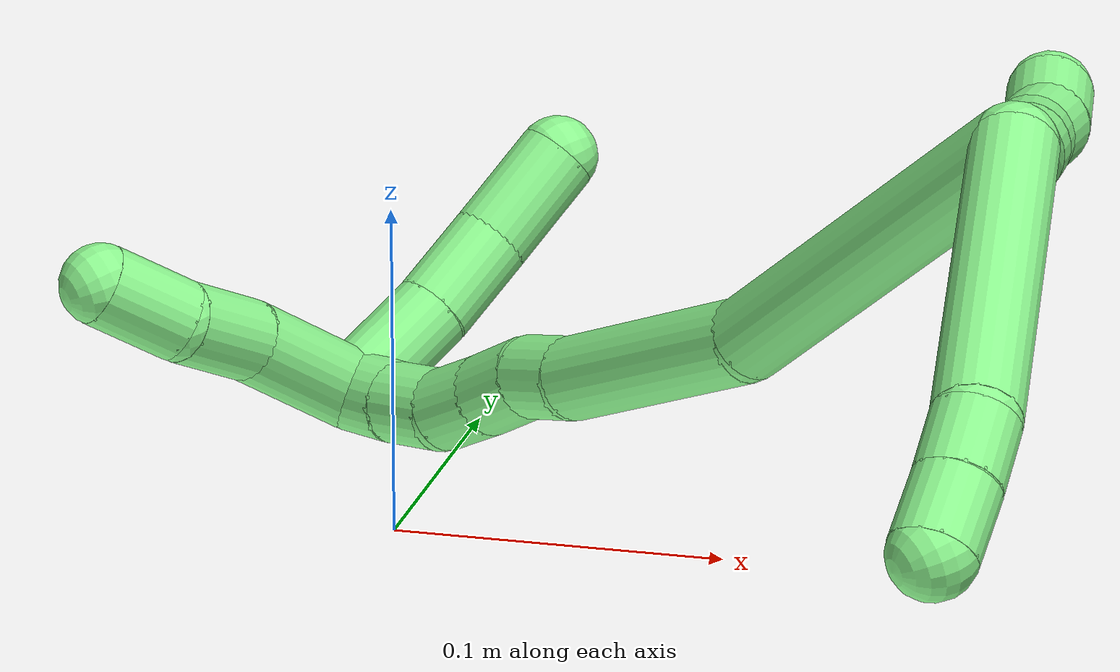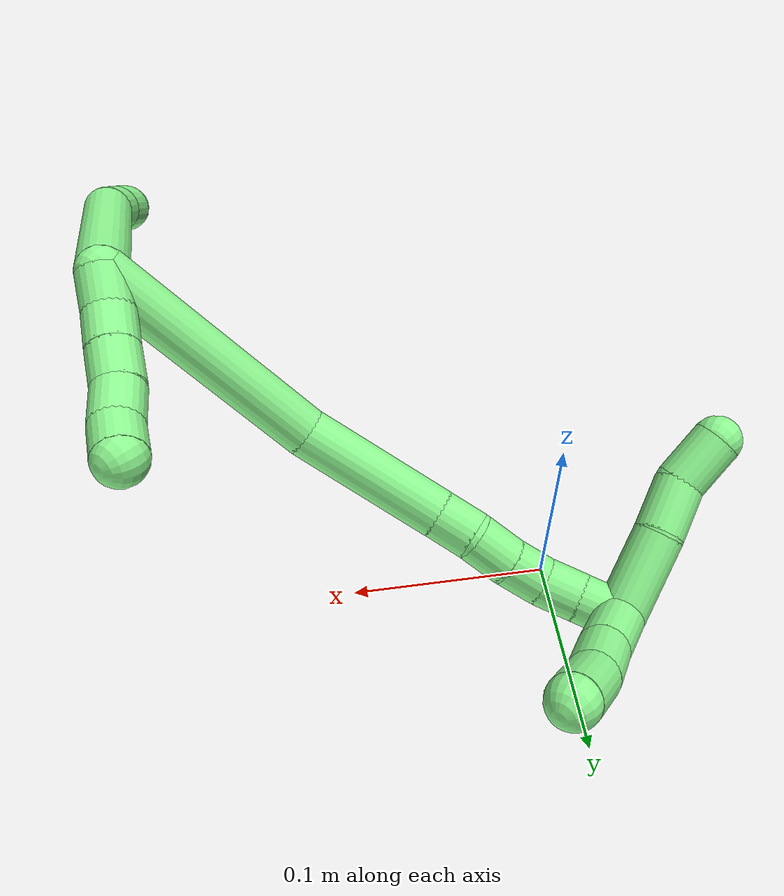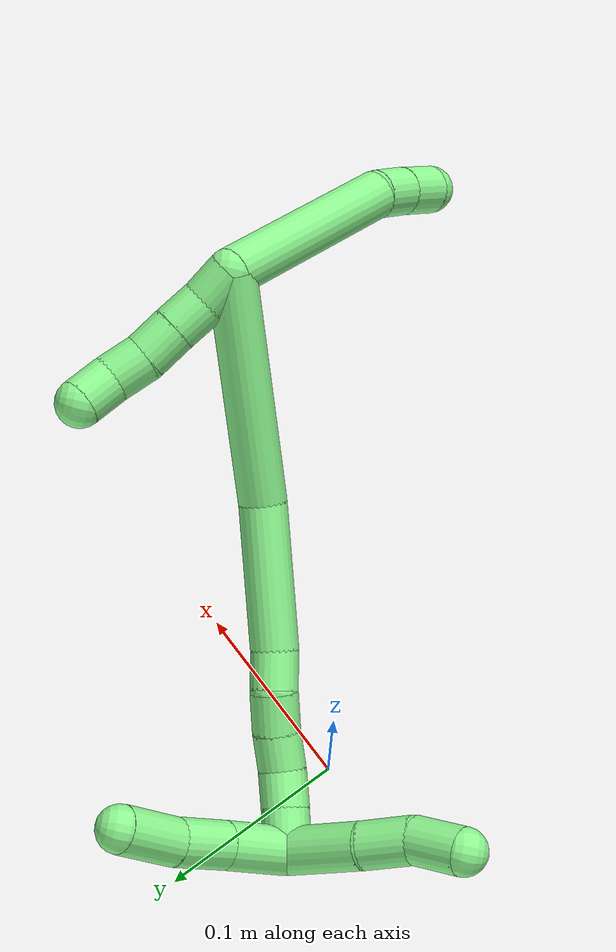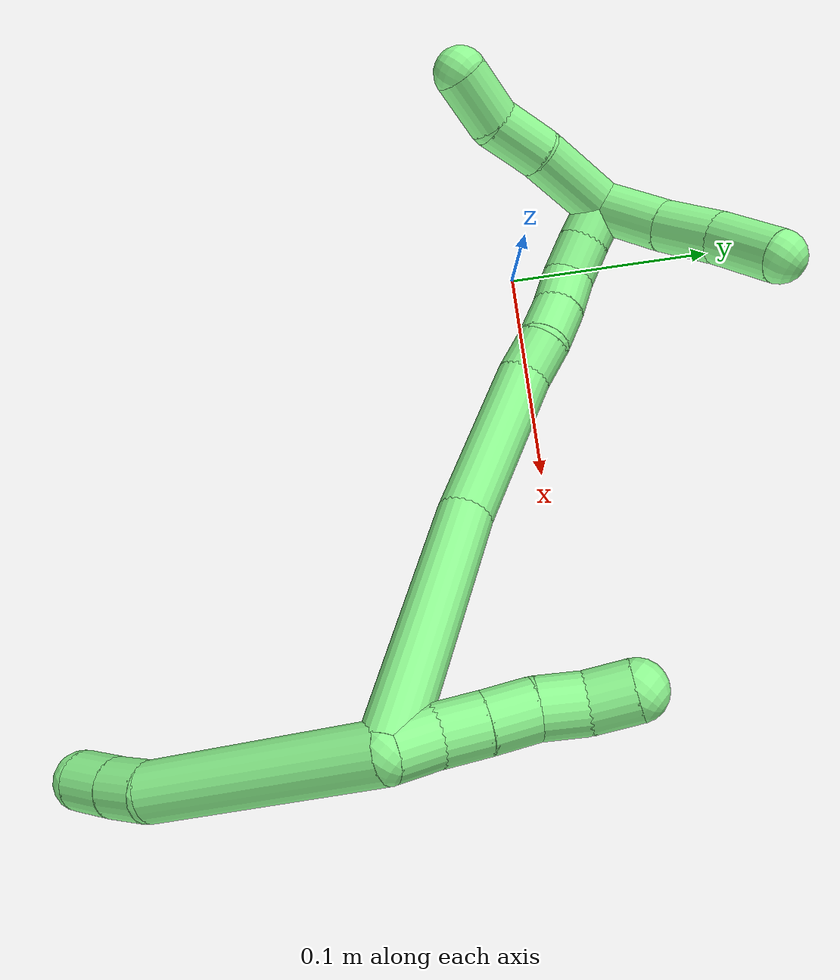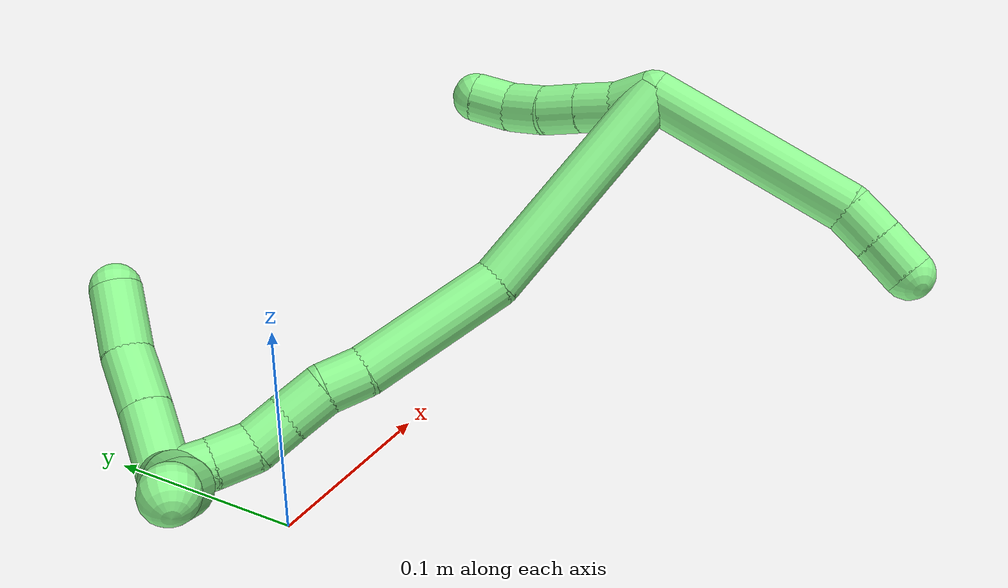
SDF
<sdf version="1.7">
 <world name="default">
  <model name="13">
   <static>0</static>
   <link name="13">
    <collision name="collision-cylinder-e_1_2_8">
     <pose>0.038835 -0.012544 -0.035199 2.79925 0.80466 2.36989</pose>
     <geometry><cylinder><radius>0.0125</radius><length>0.107786</length></cylinder></geometry>
     <surface>
      <friction><ode><mu>1.16</mu><mu2>1.16</mu2><slip1>0</slip1><slip2>0</slip2></ode></friction>
      <contact><ode><kp>1e+06</kp><kd>1</kd><max_vel>0</max_vel><min_depth>0.001</min_depth></ode></contact>
     </surface>
    </collision>
    <visual name="visual-cylinder-e_1_2_8">
     <pose>0.038835 -0.012544 -0.035199 2.79925 0.80466 2.36989</pose>
     <geometry><cylinder><radius>0.0125</radius><length>0.107786</length></cylinder></geometry>
     <material><ambient>0.564706 0.984314 0.572549 1</ambient></material>
    </visual>
    <collision name="collision-cylinder-e_2_8_9">
     <pose>0.084589 -0.024797 -0.077979 -3.10328 0.739345 -3.04279</pose>
     <geometry><cylinder><radius>0.0125</radius><length>0.020538</length></cylinder></geometry>
     <surface>
      <friction><ode><mu>1.16</mu><mu2>1.16</mu2><slip1>0</slip1><slip2>0</slip2></ode></friction>
      <contact><ode><kp>1e+06</kp><kd>1</kd><max_vel>0</max_vel><min_depth>0.001</min_depth></ode></contact>
     </surface>
    </collision>
    <visual name="visual-cylinder-e_2_8_9">
     <pose>0.084589 -0.024797 -0.077979 -3.10328 0.739345 -3.04279</pose>
     <geometry><cylinder><radius>0.0125</radius><length>0.020538</length></cylinder></geometry>
     <material><ambient>0.564706 0.984314 0.572549 1</ambient></material>
    </visual>
    <collision name="collision-cylinder-e_3_9_6">
     <pose>0.098453 -0.023903 -0.093861 -3.06907 0.695436 -2.94207</pose>
     <geometry><cylinder><radius>0.0125</radius><length>0.021676</length></cylinder></geometry>
     <surface>
      <friction><ode><mu>1.16</mu><mu2>1.16</mu2><slip1>0</slip1><slip2>0</slip2></ode></friction>
      <contact><ode><kp>1e+06</kp><kd>1</kd><max_vel>0</max_vel><min_depth>0.001</min_depth></ode></contact>
     </surface>
    </collision>
    <visual name="visual-cylinder-e_3_9_6">
     <pose>0.098453 -0.023903 -0.093861 -3.06907 0.695436 -2.94207</pose>
     <geometry><cylinder><radius>0.0125</radius><length>0.021676</length></cylinder></geometry>
     <material><ambient>0.564706 0.984314 0.572549 1</ambient></material>
    </visual>
    <collision name="collision-cylinder-e_1_2_10">
     <pose>-0.002426 0.008596 0.004498 -1.08873 -0.245088 0.148843</pose>
     <geometry><cylinder><radius>0.0125</radius><length>0.02</length></cylinder></geometry>
     <surface>
      <friction><ode><mu>1.16</mu><mu2>1.16</mu2><slip1>0</slip1><slip2>0</slip2></ode></friction>
      <contact><ode><kp>1e+06</kp><kd>1</kd><max_vel>0</max_vel><min_depth>0.001</min_depth></ode></contact>
     </surface>
    </collision>
    <visual name="visual-cylinder-e_1_2_10">
     <pose>-0.002426 0.008596 0.004498 -1.08873 -0.245088 0.148843</pose>
     <geometry><cylinder><radius>0.0125</radius><length>0.02</length></cylinder></geometry>
     <material><ambient>0.564706 0.984314 0.572549 1</ambient></material>
    </visual>
    <collision name="collision-cylinder-e_2_10_11">
     <pose>-0.00896 0.024325 0.014673 -0.898541 -0.423281 0.206454</pose>
     <geometry><cylinder><radius>0.0125</radius><length>0.02</length></cylinder></geometry>
     <surface>
      <friction><ode><mu>1.16</mu><mu2>1.16</mu2><slip1>0</slip1><slip2>0</slip2></ode></friction>
      <contact><ode><kp>1e+06</kp><kd>1</kd><max_vel>0</max_vel><min_depth>0.001</min_depth></ode></contact>
     </surface>
    </collision>
    <visual name="visual-cylinder-e_2_10_11">
     <pose>-0.00896 0.024325 0.014673 -0.898541 -0.423281 0.206454</pose>
     <geometry><cylinder><radius>0.0125</radius><length>0.02</length></cylinder></geometry>
     <material><ambient>0.564706 0.984314 0.572549 1</ambient></material>
    </visual>
    <collision name="collision-cylinder-e_3_11_12">
     <pose>-0.017246 0.038749 0.025773 -0.931285 -0.43101 0.219116</pose>
     <geometry><cylinder><radius>0.0125</radius><length>0.02</length></cylinder></geometry>
     <surface>
      <friction><ode><mu>1.16</mu><mu2>1.16</mu2><slip1>0</slip1><slip2>0</slip2></ode></friction>
      <contact><ode><kp>1e+06</kp><kd>1</kd><max_vel>0</max_vel><min_depth>0.001</min_depth></ode></contact>
     </surface>
    </collision>
    <visual name="visual-cylinder-e_3_11_12">
     <pose>-0.017246 0.038749 0.025773 -0.931285 -0.43101 0.219116</pose>
     <geometry><cylinder><radius>0.0125</radius><length>0.02</length></cylinder></geometry>
     <material><ambient>0.564706 0.984314 0.572549 1</ambient></material>
    </visual>
    <collision name="collision-cylinder-e_4_12_13">
     <pose>-0.025253 0.052256 0.038028 -0.738259 -0.392923 0.15369</pose>
     <geometry><cylinder><radius>0.0125</radius><length>0.02</length></cylinder></geometry>
     <surface>
      <friction><ode><mu>1.16</mu><mu2>1.16</mu2><slip1>0</slip1><slip2>0</slip2></ode></friction>
      <contact><ode><kp>1e+06</kp><kd>1</kd><max_vel>0</max_vel><min_depth>0.001</min_depth></ode></contact>
     </surface>
    </collision>
    <visual name="visual-cylinder-e_4_12_13">
     <pose>-0.025253 0.052256 0.038028 -0.738259 -0.392923 0.15369</pose>
     <geometry><cylinder><radius>0.0125</radius><length>0.02</length></cylinder></geometry>
     <material><ambient>0.564706 0.984314 0.572549 1</ambient></material>
    </visual>
    <collision name="collision-cylinder-e_5_13_5">
     <pose>-0.035419 0.063221 0.050968 -0.660852 -0.686396 0.243919</pose>
     <geometry><cylinder><radius>0.0125</radius><length>0.02</length></cylinder></geometry>
     <surface>
      <friction><ode><mu>1.16</mu><mu2>1.16</mu2><slip1>0</slip1><slip2>0</slip2></ode></friction>
      <contact><ode><kp>1e+06</kp><kd>1</kd><max_vel>0</max_vel><min_depth>0.001</min_depth></ode></contact>
     </surface>
    </collision>
    <visual name="visual-cylinder-e_5_13_5">
     <pose>-0.035419 0.063221 0.050968 -0.660852 -0.686396 0.243919</pose>
     <geometry><cylinder><radius>0.0125</radius><length>0.02</length></cylinder></geometry>
     <material><ambient>0.564706 0.984314 0.572549 1</ambient></material>
    </visual>
    <collision name="collision-cylinder-e_1_2_14">
     <pose>-0.01477 0.053478 -0.023619 -1.98669 -0.247473 0.377244</pose>
     <geometry><cylinder><radius>0.0125</radius><length>0.120597</length></cylinder></geometry>
     <surface>
      <friction><ode><mu>1.16</mu><mu2>1.16</mu2><slip1>0</slip1><slip2>0</slip2></ode></friction>
      <contact><ode><kp>1e+06</kp><kd>1</kd><max_vel>0</max_vel><min_depth>0.001</min_depth></ode></contact>
     </surface>
    </collision>
    <visual name="visual-cylinder-e_1_2_14">
     <pose>-0.01477 0.053478 -0.023619 -1.98669 -0.247473 0.377244</pose>
     <geometry><cylinder><radius>0.0125</radius><length>0.120597</length></cylinder></geometry>
     <material><ambient>0.564706 0.984314 0.572549 1</ambient></material>
    </visual>
    <collision name="collision-cylinder-e_2_14_15">
     <pose>-0.049191 0.137218 -0.059166 -1.94627 -0.543411 0.776946</pose>
     <geometry><cylinder><radius>0.0125</radius><length>0.076007</length></cylinder></geometry>
     <surface>
      <friction><ode><mu>1.16</mu><mu2>1.16</mu2><slip1>0</slip1><slip2>0</slip2></ode></friction>
      <contact><ode><kp>1e+06</kp><kd>1</kd><max_vel>0</max_vel><min_depth>0.001</min_depth></ode></contact>
     </surface>
    </collision>
    <visual name="visual-cylinder-e_2_14_15">
     <pose>-0.049191 0.137218 -0.059166 -1.94627 -0.543411 0.776946</pose>
     <geometry><cylinder><radius>0.0125</radius><length>0.076007</length></cylinder></geometry>
     <material><ambient>0.564706 0.984314 0.572549 1</ambient></material>
    </visual>
    <collision name="collision-cylinder-e_3_15_16">
     <pose>-0.07546 0.1751 -0.073093 -1.82724 -0.698912 0.882468</pose>
     <geometry><cylinder><radius>0.0125</radius><length>0.020578</length></cylinder></geometry>
     <surface>
      <friction><ode><mu>1.16</mu><mu2>1.16</mu2><slip1>0</slip1><slip2>0</slip2></ode></friction>
      <contact><ode><kp>1e+06</kp><kd>1</kd><max_vel>0</max_vel><min_depth>0.001</min_depth></ode></contact>
     </surface>
    </collision>
    <visual name="visual-cylinder-e_3_15_16">
     <pose>-0.07546 0.1751 -0.073093 -1.82724 -0.698912 0.882468</pose>
     <geometry><cylinder><radius>0.0125</radius><length>0.020578</length></cylinder></geometry>
     <material><ambient>0.564706 0.984314 0.572549 1</ambient></material>
    </visual>
    <collision name="collision-cylinder-e_4_16_17">
     <pose>-0.086543 0.191869 -0.078449 -1.92256 -0.42942 0.605468</pose>
     <geometry><cylinder><radius>0.0125</radius><length>0.02144</length></cylinder></geometry>
     <surface>
      <friction><ode><mu>1.16</mu><mu2>1.16</mu2><slip1>0</slip1><slip2>0</slip2></ode></friction>
      <contact><ode><kp>1e+06</kp><kd>1</kd><max_vel>0</max_vel><min_depth>0.001</min_depth></ode></contact>
     </surface>
    </collision>
    <visual name="visual-cylinder-e_4_16_17">
     <pose>-0.086543 0.191869 -0.078449 -1.92256 -0.42942 0.605468</pose>
     <geometry><cylinder><radius>0.0125</radius><length>0.02144</length></cylinder></geometry>
     <material><ambient>0.564706 0.984314 0.572549 1</ambient></material>
    </visual>
    <collision name="collision-cylinder-e_5_17_18">
     <pose>-0.09551 0.209142 -0.085713 -2.01902 -0.463349 0.717907</pose>
     <geometry><cylinder><radius>0.0125</radius><length>0.020152</length></cylinder></geometry>
     <surface>
      <friction><ode><mu>1.16</mu><mu2>1.16</mu2><slip1>0</slip1><slip2>0</slip2></ode></friction>
      <contact><ode><kp>1e+06</kp><kd>1</kd><max_vel>0</max_vel><min_depth>0.001</min_depth></ode></contact>
     </surface>
    </collision>
    <visual name="visual-cylinder-e_5_17_18">
     <pose>-0.09551 0.209142 -0.085713 -2.01902 -0.463349 0.717907</pose>
     <geometry><cylinder><radius>0.0125</radius><length>0.020152</length></cylinder></geometry>
     <material><ambient>0.564706 0.984314 0.572549 1</ambient></material>
    </visual>
    <collision name="collision-cylinder-e_6_18_19">
     <pose>-0.107354 0.22376 -0.092291 -1.96098 -0.807518 1.13531</pose>
     <geometry><cylinder><radius>0.0125</radius><length>0.020317</length></cylinder></geometry>
     <surface>
      <friction><ode><mu>1.16</mu><mu2>1.16</mu2><slip1>0</slip1><slip2>0</slip2></ode></friction>
      <contact><ode><kp>1e+06</kp><kd>1</kd><max_vel>0</max_vel><min_depth>0.001</min_depth></ode></contact>
     </surface>
    </collision>
    <visual name="visual-cylinder-e_6_18_19">
     <pose>-0.107354 0.22376 -0.092291 -1.96098 -0.807518 1.13531</pose>
     <geometry><cylinder><radius>0.0125</radius><length>0.020317</length></cylinder></geometry>
     <material><ambient>0.564706 0.984314 0.572549 1</ambient></material>
    </visual>
    <collision name="collision-cylinder-e_7_19_1">
     <pose>-0.122685 0.23661 -0.09721 -1.91087 -0.870052 1.16308</pose>
     <geometry><cylinder><radius>0.0125</radius><length>0.02091</length></cylinder></geometry>
     <surface>
      <friction><ode><mu>1.16</mu><mu2>1.16</mu2><slip1>0</slip1><slip2>0</slip2></ode></friction>
      <contact><ode><kp>1e+06</kp><kd>1</kd><max_vel>0</max_vel><min_depth>0.001</min_depth></ode></contact>
     </surface>
    </collision>
    <visual name="visual-cylinder-e_7_19_1">
     <pose>-0.122685 0.23661 -0.09721 -1.91087 -0.870052 1.16308</pose>
     <geometry><cylinder><radius>0.0125</radius><length>0.02091</length></cylinder></geometry>
     <material><ambient>0.564706 0.984314 0.572549 1</ambient></material>
    </visual>
    <collision name="collision-cylinder-e_1_1_20">
     <pose>-0.138623 0.229009 -0.114755 2.40195 -0.366453 -0.891804</pose>
     <geometry><cylinder><radius>0.0125</radius><length>0.044357</length></cylinder></geometry>
     <surface>
      <friction><ode><mu>1.16</mu><mu2>1.16</mu2><slip1>0</slip1><slip2>0</slip2></ode></friction>
      <contact><ode><kp>1e+06</kp><kd>1</kd><max_vel>0</max_vel><min_depth>0.001</min_depth></ode></contact>
     </surface>
    </collision>
    <visual name="visual-cylinder-e_1_1_20">
     <pose>-0.138623 0.229009 -0.114755 2.40195 -0.366453 -0.891804</pose>
     <geometry><cylinder><radius>0.0125</radius><length>0.044357</length></cylinder></geometry>
     <material><ambient>0.564706 0.984314 0.572549 1</ambient></material>
    </visual>
    <collision name="collision-cylinder-e_2_20_21">
     <pose>-0.149908 0.206851 -0.140619 2.48163 -0.244518 -0.688887</pose>
     <geometry><cylinder><radius>0.0125</radius><length>0.027575</length></cylinder></geometry>
     <surface>
      <friction><ode><mu>1.16</mu><mu2>1.16</mu2><slip1>0</slip1><slip2>0</slip2></ode></friction>
      <contact><ode><kp>1e+06</kp><kd>1</kd><max_vel>0</max_vel><min_depth>0.001</min_depth></ode></contact>
     </surface>
    </collision>
    <visual name="visual-cylinder-e_2_20_21">
     <pose>-0.149908 0.206851 -0.140619 2.48163 -0.244518 -0.688887</pose>
     <geometry><cylinder><radius>0.0125</radius><length>0.027575</length></cylinder></geometry>
     <material><ambient>0.564706 0.984314 0.572549 1</ambient></material>
    </visual>
    <collision name="collision-cylinder-e_3_21_4">
     <pose>-0.160958 0.19237 -0.161088 2.57642 -0.581855 -1.60155</pose>
     <geometry><cylinder><radius>0.0125</radius><length>0.028068</length></cylinder></geometry>
     <surface>
      <friction><ode><mu>1.16</mu><mu2>1.16</mu2><slip1>0</slip1><slip2>0</slip2></ode></friction>
      <contact><ode><kp>1e+06</kp><kd>1</kd><max_vel>0</max_vel><min_depth>0.001</min_depth></ode></contact>
     </surface>
    </collision>
    <visual name="visual-cylinder-e_3_21_4">
     <pose>-0.160958 0.19237 -0.161088 2.57642 -0.581855 -1.60155</pose>
     <geometry><cylinder><radius>0.0125</radius><length>0.028068</length></cylinder></geometry>
     <material><ambient>0.564706 0.984314 0.572549 1</ambient></material>
    </visual>
    <collision name="collision-cylinder-e_1_1_22">
     <pose>-0.136122 0.240536 -0.082381 0.141281 -0.305788 -0.021806</pose>
     <geometry><cylinder><radius>0.0125</radius><length>0.036179</length></cylinder></geometry>
     <surface>
      <friction><ode><mu>1.16</mu><mu2>1.16</mu2><slip1>0</slip1><slip2>0</slip2></ode></friction>
      <contact><ode><kp>1e+06</kp><kd>1</kd><max_vel>0</max_vel><min_depth>0.001</min_depth></ode></contact>
     </surface>
    </collision>
    <visual name="visual-cylinder-e_1_1_22">
     <pose>-0.136122 0.240536 -0.082381 0.141281 -0.305788 -0.021806</pose>
     <geometry><cylinder><radius>0.0125</radius><length>0.036179</length></cylinder></geometry>
     <material><ambient>0.564706 0.984314 0.572549 1</ambient></material>
    </visual>
    <collision name="collision-cylinder-e_2_22_23">
     <pose>-0.147218 0.235415 -0.051768 0.196386 -0.388617 -0.038767</pose>
     <geometry><cylinder><radius>0.0125</radius><length>0.029822</length></cylinder></geometry>
     <surface>
      <friction><ode><mu>1.16</mu><mu2>1.16</mu2><slip1>0</slip1><slip2>0</slip2></ode></friction>
      <contact><ode><kp>1e+06</kp><kd>1</kd><max_vel>0</max_vel><min_depth>0.001</min_depth></ode></contact>
     </surface>
    </collision>
    <visual name="visual-cylinder-e_2_22_23">
     <pose>-0.147218 0.235415 -0.051768 0.196386 -0.388617 -0.038767</pose>
     <geometry><cylinder><radius>0.0125</radius><length>0.029822</length></cylinder></geometry>
     <material><ambient>0.564706 0.984314 0.572549 1</ambient></material>
    </visual>
    <collision name="collision-cylinder-e_3_23_3">
     <pose>-0.158616 0.227198 -0.02322 0.352541 -0.34494 -0.062037</pose>
     <geometry><cylinder><radius>0.0125</radius><length>0.033999</length></cylinder></geometry>
     <surface>
      <friction><ode><mu>1.16</mu><mu2>1.16</mu2><slip1>0</slip1><slip2>0</slip2></ode></friction>
      <contact><ode><kp>1e+06</kp><kd>1</kd><max_vel>0</max_vel><min_depth>0.001</min_depth></ode></contact>
     </surface>
    </collision>
    <visual name="visual-cylinder-e_3_23_3">
     <pose>-0.158616 0.227198 -0.02322 0.352541 -0.34494 -0.062037</pose>
     <geometry><cylinder><radius>0.0125</radius><length>0.033999</length></cylinder></geometry>
     <material><ambient>0.564706 0.984314 0.572549 1</ambient></material>
    </visual>
    <collision name="collision-sphere-3">
     <pose>-0.164364 0.221674 -0.008206 0 -0 0</pose>
     <geometry><sphere><radius>0.0125</radius></sphere></geometry>
     <surface>
      <friction><ode><mu>1.16</mu><mu2>1.16</mu2><slip1>0</slip1><slip2>0</slip2></ode></friction>
      <contact><ode><kp>1e+06</kp><kd>1</kd><max_vel>0</max_vel><min_depth>0.001</min_depth></ode></contact>
     </surface>
    </collision>
    <visual name="visual-sphere-3">
     <pose>-0.164364 0.221674 -0.008206 0 -0 0</pose>
     <geometry><sphere><radius>0.0125</radius></sphere></geometry>
     <material><ambient>0.564706 0.984314 0.572549 1</ambient></material>
    </visual>
    <collision name="collision-sphere-23">
     <pose>-0.152868 0.232722 -0.038235 0 -0 0</pose>
     <geometry><sphere><radius>0.0125</radius></sphere></geometry>
     <surface>
      <friction><ode><mu>1.16</mu><mu2>1.16</mu2><slip1>0</slip1><slip2>0</slip2></ode></friction>
      <contact><ode><kp>1e+06</kp><kd>1</kd><max_vel>0</max_vel><min_depth>0.001</min_depth></ode></contact>
     </surface>
    </collision>
    <visual name="visual-sphere-23">
     <pose>-0.152868 0.232722 -0.038235 0 -0 0</pose>
     <geometry><sphere><radius>0.0125</radius></sphere></geometry>
     <material><ambient>0.564706 0.984314 0.572549 1</ambient></material>
    </visual>
    <collision name="collision-sphere-22">
     <pose>-0.141568 0.238107 -0.065302 0 -0 0</pose>
     <geometry><sphere><radius>0.0125</radius></sphere></geometry>
     <surface>
      <friction><ode><mu>1.16</mu><mu2>1.16</mu2><slip1>0</slip1><slip2>0</slip2></ode></friction>
      <contact><ode><kp>1e+06</kp><kd>1</kd><max_vel>0</max_vel><min_depth>0.001</min_depth></ode></contact>
     </surface>
    </collision>
    <visual name="visual-sphere-22">
     <pose>-0.141568 0.238107 -0.065302 0 -0 0</pose>
     <geometry><sphere><radius>0.0125</radius></sphere></geometry>
     <material><ambient>0.564706 0.984314 0.572549 1</ambient></material>
    </visual>
    <collision name="collision-sphere-4">
     <pose>-0.168671 0.186091 -0.17099 0 -0 0</pose>
     <geometry><sphere><radius>0.0125</radius></sphere></geometry>
     <surface>
      <friction><ode><mu>1.16</mu><mu2>1.16</mu2><slip1>0</slip1><slip2>0</slip2></ode></friction>
      <contact><ode><kp>1e+06</kp><kd>1</kd><max_vel>0</max_vel><min_depth>0.001</min_depth></ode></contact>
     </surface>
    </collision>
    <visual name="visual-sphere-4">
     <pose>-0.168671 0.186091 -0.17099 0 -0 0</pose>
     <geometry><sphere><radius>0.0125</radius></sphere></geometry>
     <material><ambient>0.564706 0.984314 0.572549 1</ambient></material>
    </visual>
    <collision name="collision-sphere-21">
     <pose>-0.153246 0.198649 -0.151187 0 -0 0</pose>
     <geometry><sphere><radius>0.0125</radius></sphere></geometry>
     <surface>
      <friction><ode><mu>1.16</mu><mu2>1.16</mu2><slip1>0</slip1><slip2>0</slip2></ode></friction>
      <contact><ode><kp>1e+06</kp><kd>1</kd><max_vel>0</max_vel><min_depth>0.001</min_depth></ode></contact>
     </surface>
    </collision>
    <visual name="visual-sphere-21">
     <pose>-0.153246 0.198649 -0.151187 0 -0 0</pose>
     <geometry><sphere><radius>0.0125</radius></sphere></geometry>
     <material><ambient>0.564706 0.984314 0.572549 1</ambient></material>
    </visual>
    <collision name="collision-sphere-20">
     <pose>-0.14657 0.215052 -0.13005 0 -0 0</pose>
     <geometry><sphere><radius>0.0125</radius></sphere></geometry>
     <surface>
      <friction><ode><mu>1.16</mu><mu2>1.16</mu2><slip1>0</slip1><slip2>0</slip2></ode></friction>
      <contact><ode><kp>1e+06</kp><kd>1</kd><max_vel>0</max_vel><min_depth>0.001</min_depth></ode></contact>
     </surface>
    </collision>
    <visual name="visual-sphere-20">
     <pose>-0.14657 0.215052 -0.13005 0 -0 0</pose>
     <geometry><sphere><radius>0.0125</radius></sphere></geometry>
     <material><ambient>0.564706 0.984314 0.572549 1</ambient></material>
    </visual>
    <collision name="collision-sphere-11">
     <pose>-0.013068 0.031459 0.020351 0 -0 0</pose>
     <geometry><sphere><radius>0.0125</radius></sphere></geometry>
     <surface>
      <friction><ode><mu>1.16</mu><mu2>1.16</mu2><slip1>0</slip1><slip2>0</slip2></ode></friction>
      <contact><ode><kp>1e+06</kp><kd>1</kd><max_vel>0</max_vel><min_depth>0.001</min_depth></ode></contact>
     </surface>
    </collision>
    <visual name="visual-sphere-11">
     <pose>-0.013068 0.031459 0.020351 0 -0 0</pose>
     <geometry><sphere><radius>0.0125</radius></sphere></geometry>
     <material><ambient>0.564706 0.984314 0.572549 1</ambient></material>
    </visual>
    <collision name="collision-sphere-10">
     <pose>-0.004853 0.017191 0.008995 0 -0 0</pose>
     <geometry><sphere><radius>0.0125</radius></sphere></geometry>
     <surface>
      <friction><ode><mu>1.16</mu><mu2>1.16</mu2><slip1>0</slip1><slip2>0</slip2></ode></friction>
      <contact><ode><kp>1e+06</kp><kd>1</kd><max_vel>0</max_vel><min_depth>0.001</min_depth></ode></contact>
     </surface>
    </collision>
    <visual name="visual-sphere-10">
     <pose>-0.004853 0.017191 0.008995 0 -0 0</pose>
     <geometry><sphere><radius>0.0125</radius></sphere></geometry>
     <material><ambient>0.564706 0.984314 0.572549 1</ambient></material>
    </visual>
    <collision name="collision-sphere-6">
     <pose>0.105397 -0.0233 -0.102161 0 -0 0</pose>
     <geometry><sphere><radius>0.0125</radius></sphere></geometry>
     <surface>
      <friction><ode><mu>1.16</mu><mu2>1.16</mu2><slip1>0</slip1><slip2>0</slip2></ode></friction>
      <contact><ode><kp>1e+06</kp><kd>1</kd><max_vel>0</max_vel><min_depth>0.001</min_depth></ode></contact>
     </surface>
    </collision>
    <visual name="visual-sphere-6">
     <pose>0.105397 -0.0233 -0.102161 0 -0 0</pose>
     <geometry><sphere><radius>0.0125</radius></sphere></geometry>
     <material><ambient>0.564706 0.984314 0.572549 1</ambient></material>
    </visual>
    <collision name="collision-sphere-9">
     <pose>0.091508 -0.024506 -0.085562 0 -0 0</pose>
     <geometry><sphere><radius>0.0125</radius></sphere></geometry>
     <surface>
      <friction><ode><mu>1.16</mu><mu2>1.16</mu2><slip1>0</slip1><slip2>0</slip2></ode></friction>
      <contact><ode><kp>1e+06</kp><kd>1</kd><max_vel>0</max_vel><min_depth>0.001</min_depth></ode></contact>
     </surface>
    </collision>
    <visual name="visual-sphere-9">
     <pose>0.091508 -0.024506 -0.085562 0 -0 0</pose>
     <geometry><sphere><radius>0.0125</radius></sphere></geometry>
     <material><ambient>0.564706 0.984314 0.572549 1</ambient></material>
    </visual>
    <collision name="collision-sphere-2">
     <geometry><sphere><radius>0.0125</radius></sphere></geometry>
     <surface>
      <friction><ode><mu>1.16</mu><mu2>1.16</mu2><slip1>0</slip1><slip2>0</slip2></ode></friction>
      <contact><ode><kp>1e+06</kp><kd>1</kd><max_vel>0</max_vel><min_depth>0.001</min_depth></ode></contact>
     </surface>
    </collision>
    <visual name="visual-sphere-2">
     <geometry><sphere><radius>0.0125</radius></sphere></geometry>
     <material><ambient>0.564706 0.984314 0.572549 1</ambient></material>
    </visual>
    <collision name="collision-sphere-19">
     <pose>-0.114694 0.230255 -0.094962 0 -0 0</pose>
     <geometry><sphere><radius>0.0125</radius></sphere></geometry>
     <surface>
      <friction><ode><mu>1.16</mu><mu2>1.16</mu2><slip1>0</slip1><slip2>0</slip2></ode></friction>
      <contact><ode><kp>1e+06</kp><kd>1</kd><max_vel>0</max_vel><min_depth>0.001</min_depth></ode></contact>
     </surface>
    </collision>
    <visual name="visual-sphere-19">
     <pose>-0.114694 0.230255 -0.094962 0 -0 0</pose>
     <geometry><sphere><radius>0.0125</radius></sphere></geometry>
     <material><ambient>0.564706 0.984314 0.572549 1</ambient></material>
    </visual>
    <collision name="collision-sphere-8">
     <pose>0.07767 -0.025088 -0.070397 0 -0 0</pose>
     <geometry><sphere><radius>0.0125</radius></sphere></geometry>
     <surface>
      <friction><ode><mu>1.16</mu><mu2>1.16</mu2><slip1>0</slip1><slip2>0</slip2></ode></friction>
      <contact><ode><kp>1e+06</kp><kd>1</kd><max_vel>0</max_vel><min_depth>0.001</min_depth></ode></contact>
     </surface>
    </collision>
    <visual name="visual-sphere-8">
     <pose>0.07767 -0.025088 -0.070397 0 -0 0</pose>
     <geometry><sphere><radius>0.0125</radius></sphere></geometry>
     <material><ambient>0.564706 0.984314 0.572549 1</ambient></material>
    </visual>
    <collision name="collision-sphere-12">
     <pose>-0.021424 0.046039 0.031195 0 -0 0</pose>
     <geometry><sphere><radius>0.0125</radius></sphere></geometry>
     <surface>
      <friction><ode><mu>1.16</mu><mu2>1.16</mu2><slip1>0</slip1><slip2>0</slip2></ode></friction>
      <contact><ode><kp>1e+06</kp><kd>1</kd><max_vel>0</max_vel><min_depth>0.001</min_depth></ode></contact>
     </surface>
    </collision>
    <visual name="visual-sphere-12">
     <pose>-0.021424 0.046039 0.031195 0 -0 0</pose>
     <geometry><sphere><radius>0.0125</radius></sphere></geometry>
     <material><ambient>0.564706 0.984314 0.572549 1</ambient></material>
    </visual>
    <collision name="collision-sphere-13">
     <pose>-0.029081 0.058473 0.044861 0 -0 0</pose>
     <geometry><sphere><radius>0.0125</radius></sphere></geometry>
     <surface>
      <friction><ode><mu>1.16</mu><mu2>1.16</mu2><slip1>0</slip1><slip2>0</slip2></ode></friction>
      <contact><ode><kp>1e+06</kp><kd>1</kd><max_vel>0</max_vel><min_depth>0.001</min_depth></ode></contact>
     </surface>
    </collision>
    <visual name="visual-sphere-13">
     <pose>-0.029081 0.058473 0.044861 0 -0 0</pose>
     <geometry><sphere><radius>0.0125</radius></sphere></geometry>
     <material><ambient>0.564706 0.984314 0.572549 1</ambient></material>
    </visual>
    <collision name="collision-sphere-5">
     <pose>-0.041757 0.067969 0.057075 0 -0 0</pose>
     <geometry><sphere><radius>0.0125</radius></sphere></geometry>
     <surface>
      <friction><ode><mu>1.16</mu><mu2>1.16</mu2><slip1>0</slip1><slip2>0</slip2></ode></friction>
      <contact><ode><kp>1e+06</kp><kd>1</kd><max_vel>0</max_vel><min_depth>0.001</min_depth></ode></contact>
     </surface>
    </collision>
    <visual name="visual-sphere-5">
     <pose>-0.041757 0.067969 0.057075 0 -0 0</pose>
     <geometry><sphere><radius>0.0125</radius></sphere></geometry>
     <material><ambient>0.564706 0.984314 0.572549 1</ambient></material>
    </visual>
    <collision name="collision-sphere-14">
     <pose>-0.029541 0.106956 -0.047238 0 -0 0</pose>
     <geometry><sphere><radius>0.0125</radius></sphere></geometry>
     <surface>
      <friction><ode><mu>1.16</mu><mu2>1.16</mu2><slip1>0</slip1><slip2>0</slip2></ode></friction>
      <contact><ode><kp>1e+06</kp><kd>1</kd><max_vel>0</max_vel><min_depth>0.001</min_depth></ode></contact>
     </surface>
    </collision>
    <visual name="visual-sphere-14">
     <pose>-0.029541 0.106956 -0.047238 0 -0 0</pose>
     <geometry><sphere><radius>0.0125</radius></sphere></geometry>
     <material><ambient>0.564706 0.984314 0.572549 1</ambient></material>
    </visual>
    <collision name="collision-sphere-15">
     <pose>-0.068841 0.167481 -0.071095 0 -0 0</pose>
     <geometry><sphere><radius>0.0125</radius></sphere></geometry>
     <surface>
      <friction><ode><mu>1.16</mu><mu2>1.16</mu2><slip1>0</slip1><slip2>0</slip2></ode></friction>
      <contact><ode><kp>1e+06</kp><kd>1</kd><max_vel>0</max_vel><min_depth>0.001</min_depth></ode></contact>
     </surface>
    </collision>
    <visual name="visual-sphere-15">
     <pose>-0.068841 0.167481 -0.071095 0 -0 0</pose>
     <geometry><sphere><radius>0.0125</radius></sphere></geometry>
     <material><ambient>0.564706 0.984314 0.572549 1</ambient></material>
    </visual>
    <collision name="collision-sphere-16">
     <pose>-0.08208 0.182719 -0.075091 0 -0 0</pose>
     <geometry><sphere><radius>0.0125</radius></sphere></geometry>
     <surface>
      <friction><ode><mu>1.16</mu><mu2>1.16</mu2><slip1>0</slip1><slip2>0</slip2></ode></friction>
      <contact><ode><kp>1e+06</kp><kd>1</kd><max_vel>0</max_vel><min_depth>0.001</min_depth></ode></contact>
     </surface>
    </collision>
    <visual name="visual-sphere-16">
     <pose>-0.08208 0.182719 -0.075091 0 -0 0</pose>
     <geometry><sphere><radius>0.0125</radius></sphere></geometry>
     <material><ambient>0.564706 0.984314 0.572549 1</ambient></material>
    </visual>
    <collision name="collision-sphere-17">
     <pose>-0.091007 0.201019 -0.081807 0 -0 0</pose>
     <geometry><sphere><radius>0.0125</radius></sphere></geometry>
     <surface>
      <friction><ode><mu>1.16</mu><mu2>1.16</mu2><slip1>0</slip1><slip2>0</slip2></ode></friction>
      <contact><ode><kp>1e+06</kp><kd>1</kd><max_vel>0</max_vel><min_depth>0.001</min_depth></ode></contact>
     </surface>
    </collision>
    <visual name="visual-sphere-17">
     <pose>-0.091007 0.201019 -0.081807 0 -0 0</pose>
     <geometry><sphere><radius>0.0125</radius></sphere></geometry>
     <material><ambient>0.564706 0.984314 0.572549 1</ambient></material>
    </visual>
    <collision name="collision-sphere-18">
     <pose>-0.100013 0.217265 -0.08962 0 -0 0</pose>
     <geometry><sphere><radius>0.0125</radius></sphere></geometry>
     <surface>
      <friction><ode><mu>1.16</mu><mu2>1.16</mu2><slip1>0</slip1><slip2>0</slip2></ode></friction>
      <contact><ode><kp>1e+06</kp><kd>1</kd><max_vel>0</max_vel><min_depth>0.001</min_depth></ode></contact>
     </surface>
    </collision>
    <visual name="visual-sphere-18">
     <pose>-0.100013 0.217265 -0.08962 0 -0 0</pose>
     <geometry><sphere><radius>0.0125</radius></sphere></geometry>
     <material><ambient>0.564706 0.984314 0.572549 1</ambient></material>
    </visual>
    <collision name="collision-sphere-1">
     <pose>-0.130677 0.242965 -0.099459 0 -0 0</pose>
     <geometry><sphere><radius>0.0125</radius></sphere></geometry>
     <surface>
      <friction><ode><mu>1.16</mu><mu2>1.16</mu2><slip1>0</slip1><slip2>0</slip2></ode></friction>
      <contact><ode><kp>1e+06</kp><kd>1</kd><max_vel>0</max_vel><min_depth>0.001</min_depth></ode></contact>
     </surface>
    </collision>
    <visual name="visual-sphere-1">
     <pose>-0.130677 0.242965 -0.099459 0 -0 0</pose>
     <geometry><sphere><radius>0.0125</radius></sphere></geometry>
     <material><ambient>0.564706 0.984314 0.572549 1</ambient></material>
    </visual>
    <inertial>
     <pose>-0.051782 0.112502 -0.052961 0 -0 0</pose>
     <mass>0.75</mass>
     <inertia>
      <ixx>0.000247</ixx>
      <ixy>0</ixy>
      <ixz>0</ixz>
      <iyy>0.000211</iyy>
      <iyz>0</iyz>
      <izz>-0.000154</izz>
     </inertia>
    </inertial>
   </link>
   <pose>0.198569 -0.085305 0.161024 -1.27505 0.626306 -0.625542</pose>
  </model>
 </world>
</sdf>
